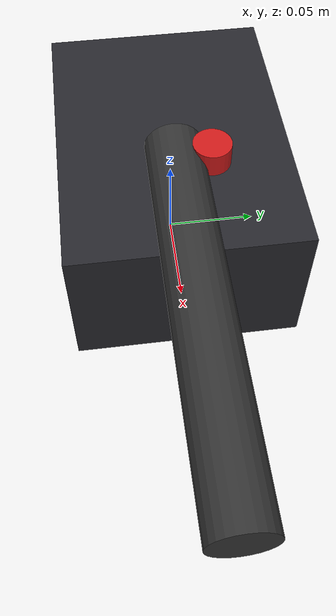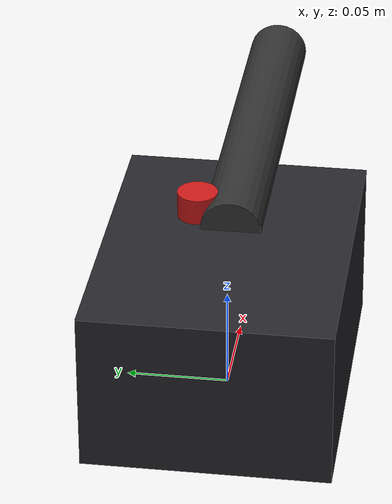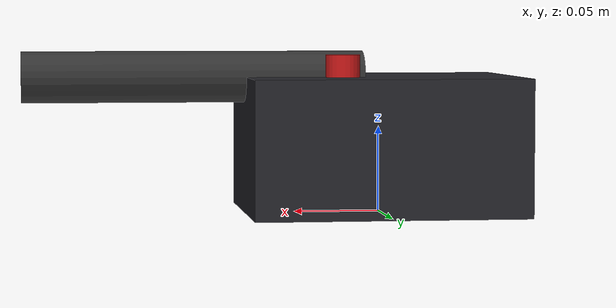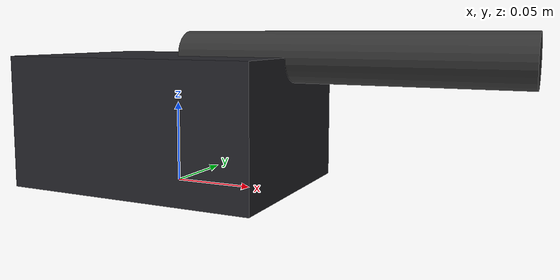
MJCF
<?xml version="1.0" encoding="utf-8"?>
<mujoco model="alternate_light_source">
  <compiler angle="radian" autolimits="true"/>
  <default>
    <default class="body"><geom contype="1" conaffinity="1"/></default>
  </default>
  <worldbody>
    <body name="base">
      <geom type="box" size="0.08 0.06 0.04" pos="0 0 0.04" rgba="0.15 0.15 0.17 1" class="body"/>
      <geom type="cylinder" size="0.01 0.008" pos="0.024 0.018 0.085" rgba="0.8 0.1 0.1 1" class="body"/>
      <body name="light_arm" pos="0.06 0 0.08">
        <joint name="light_arm_joint" type="hinge" axis="0 1 0" range="-0.8 0.4" damping="0.3" frictionloss="0.3"/>
  <geom type="cylinder" size="0.015 0.10" pos="0.05 0 0" rgba="0.2 0.2 0.2 1" class="body" quat="0.7071068 0 0.7071068 0"/>
      </body>
    </body>
  </worldbody>
</mujoco>
